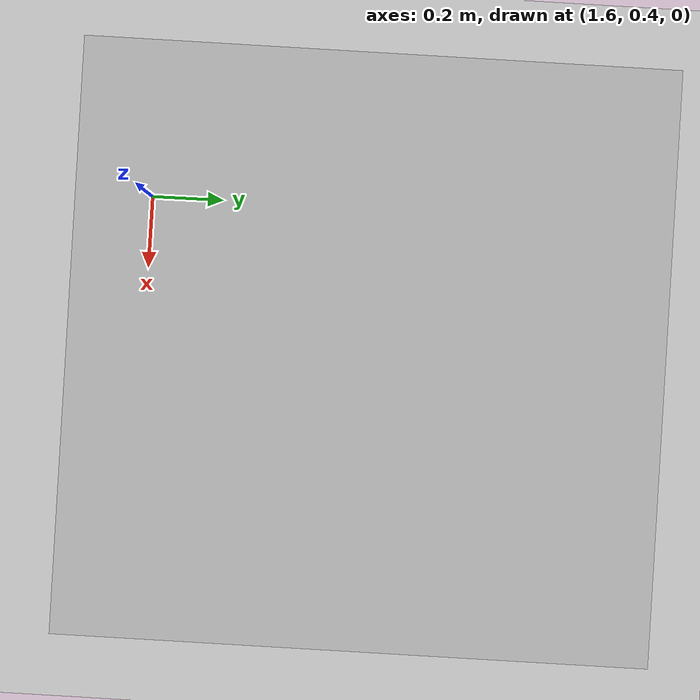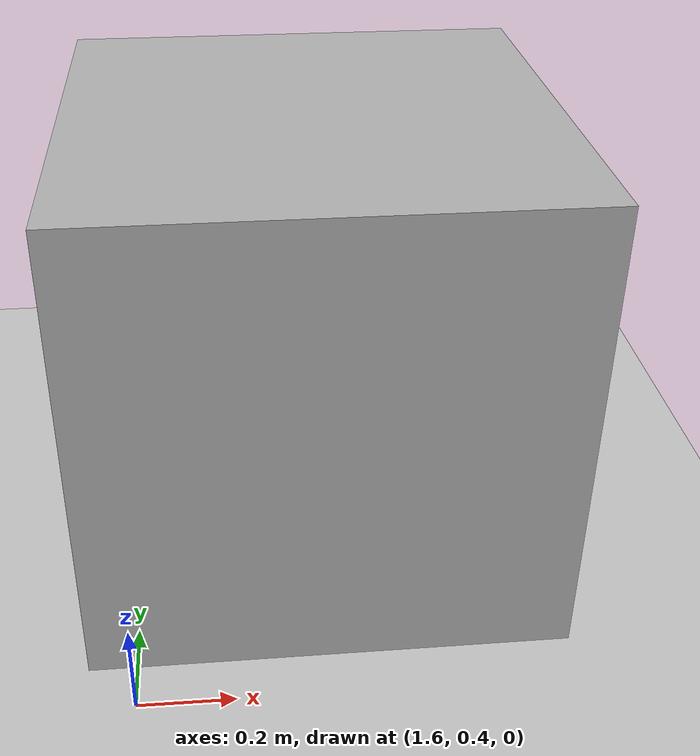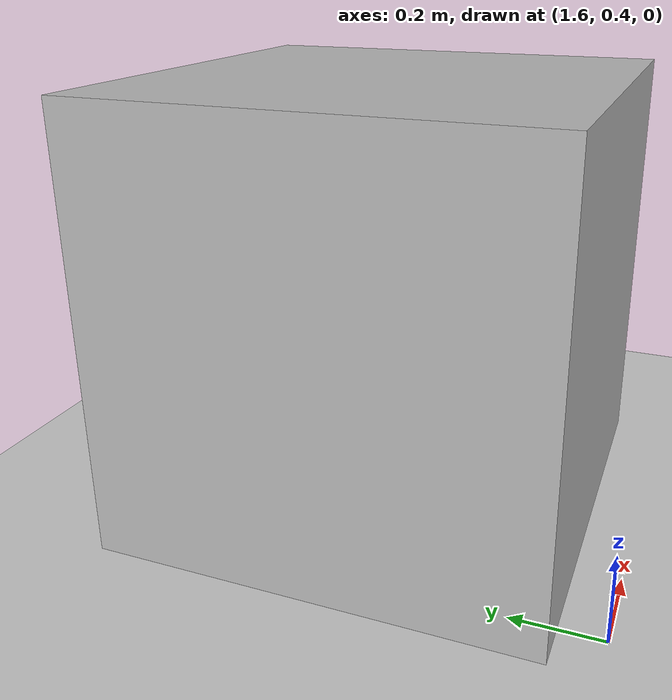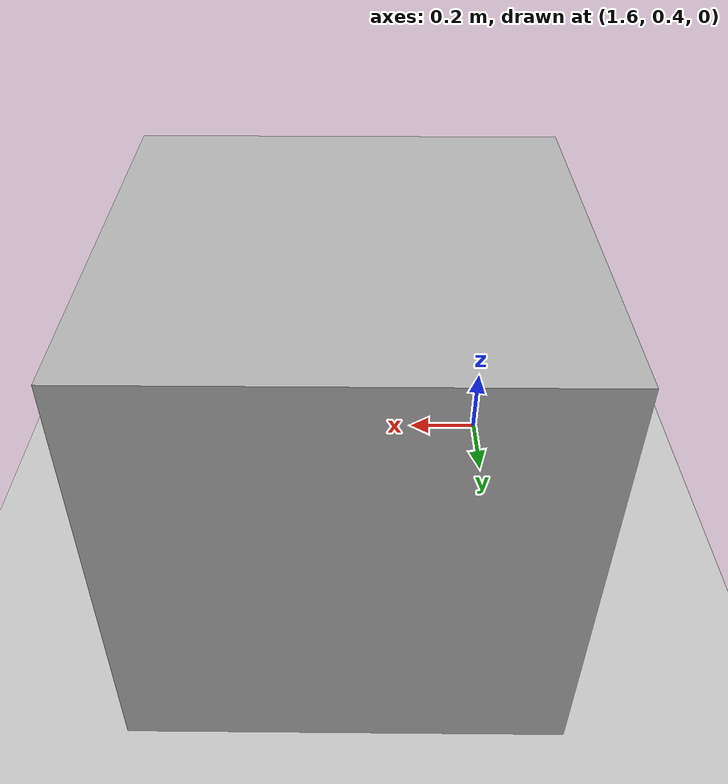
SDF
<?xml version="1.0" ?>
<sdf version="1.9">
  <world name="empty">

    <!-- Physics -->
    <physics type="ignored">
      <max_step_size>0.001</max_step_size>
      <real_time_factor>1</real_time_factor>
      <real_time_update_rate>1000</real_time_update_rate>
    </physics>

    <!-- Gazebo Systems -->
    <plugin name="physics" filename="gz-sim-physics-system"/>
    <plugin name="user_commands" filename="gz-sim-user-commands-system"/>
    <plugin name="scene_broadcaster" filename="gz-sim-scene-broadcaster-system"/>
    <plugin name="contact" filename="gz-sim-contact-system"/>
    <plugin name="sensors" filename="gz-sim-sensors-system">
      <render_engine>ogre2</render_engine>
    </plugin>

    <!-- Gravity -->
    <gravity>0 0 -9.81</gravity>

    <!-- Ground Plane -->
    <model name="ground_plane">
      <static>true</static>
      <link name="link">
        <collision name="collision">
          <geometry>
            <plane>
              <normal>0 0 1</normal>
              <size>100 100</size>
            </plane>
          </geometry>
        </collision>
        <visual name="visual">
          <geometry>
            <plane>
              <normal>0 0 1</normal>
              <size>100 100</size>
            </plane>
          </geometry>
        </visual>
      </link>
    </model>

    <!-- Simple Box Obstacle -->
    <model name="box">
      <pose>2 1 0.5 0 0 0</pose>
      <link name="link">
        <collision name="collision">
          <geometry>
            <box>
              <size>1 1 1</size>
            </box>
          </geometry>
        </collision>
        <visual name="visual">
          <geometry>
            <box>
              <size>1 1 1</size>
            </box>
          </geometry>
        </visual>
        <inertial>
          <mass>1</mass>
          <inertia>
            <ixx>0.166</ixx>
            <iyy>0.166</iyy>
            <izz>0.166</izz>
          </inertia>
        </inertial>
      </link>
    </model>

    <!-- Sun -->
    <light name="sun" type="directional">
      <pose>0 0 10 0 0 0</pose>
      <direction>-0.5 0.1 -0.9</direction>
    </light>

  </world>
</sdf>
